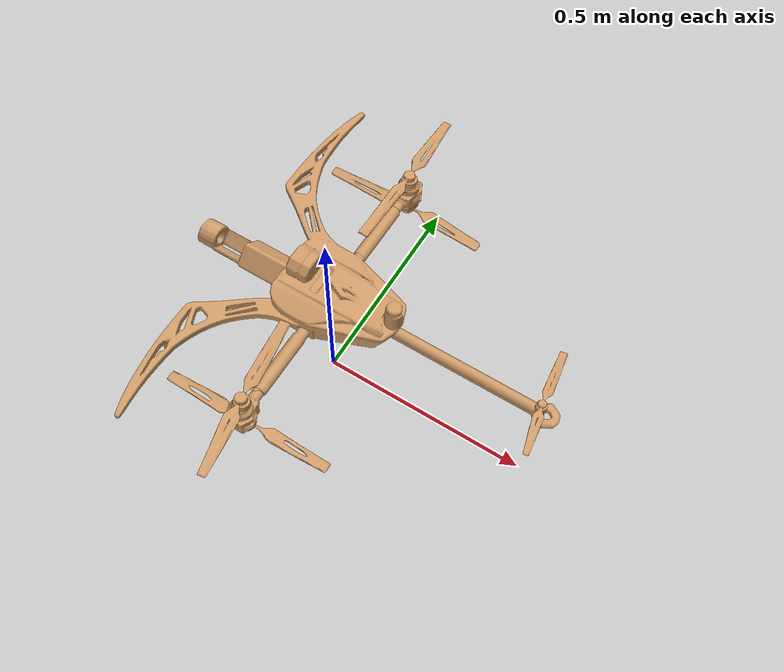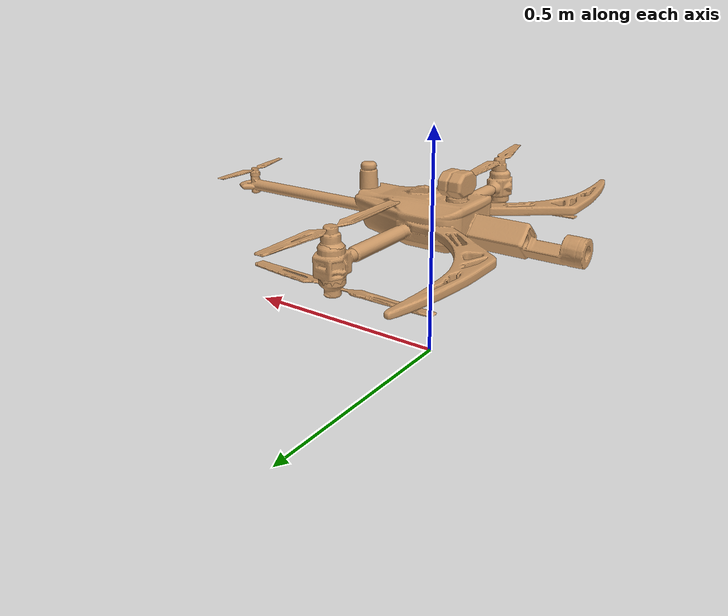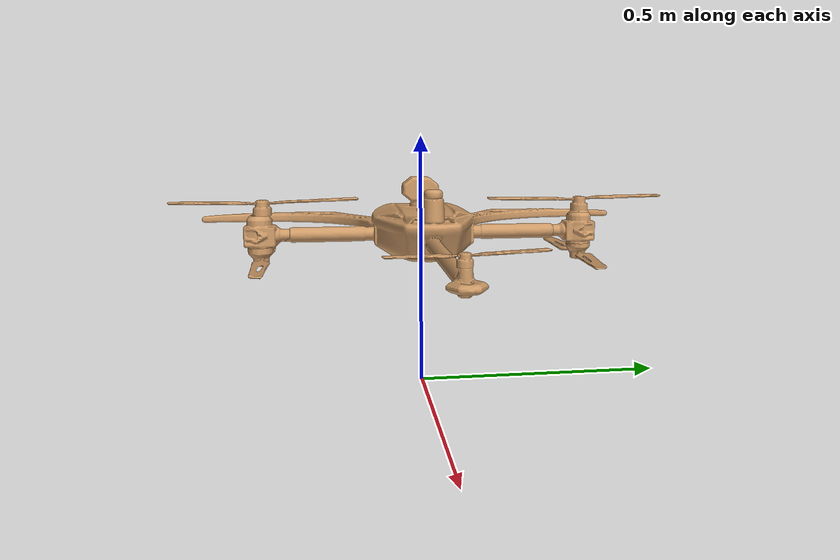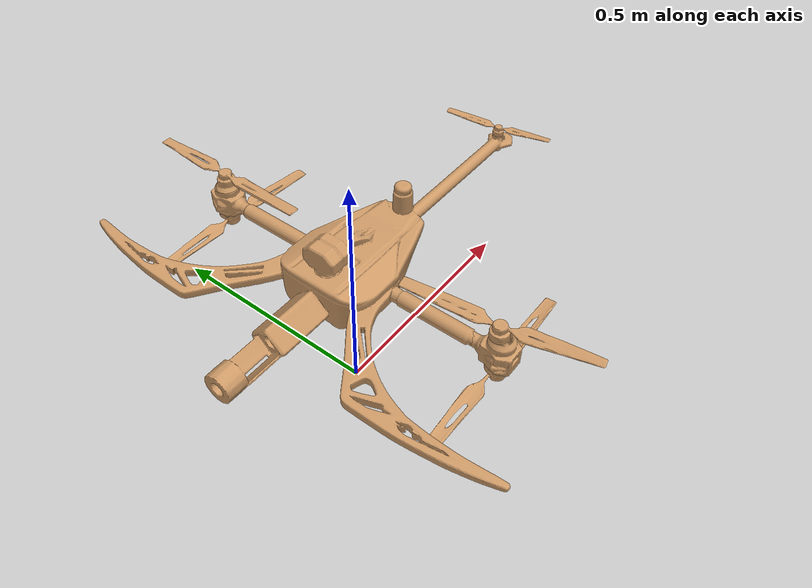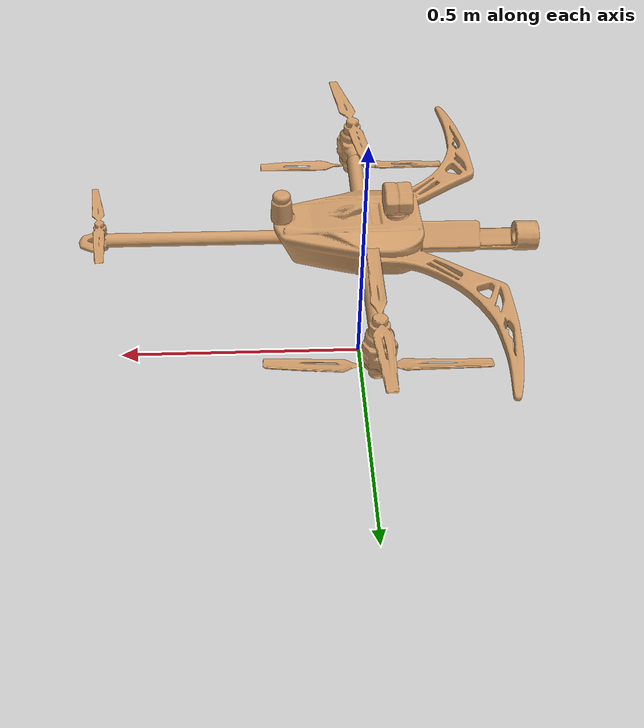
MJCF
<mujoco model="hnuter">
  <!-- 编译器设置：自动计算质量分布限制，使用弧度制，资源目录 -->
  <compiler autolimits="true" angle="radian" assetdir="assets_hnu"/>

  <!-- 物理环境参数：时间步长、重力、空气密度、粘度 -->
  <option timestep="0.005" gravity="0 0 -9.81" density="1.225" viscosity="1.8e-5"/>

  <!-- 全局资源（材质、纹理、网格） -->
  <asset>
    <!-- 纹理：天空盒渐变效果 -->
    <texture type="skybox" builtin="gradient" width="512" height="512" rgb1="0.6 0.8 1" rgb2="0.2 0.3 0.6"/>

    <!-- 材质：定义视觉和碰撞的材质特性 -->
    <material name="visualGeo" rgba="0.8 0.6 0.4 1"/> <!-- 视觉材质：橙色 -->
    <material name="collisionGeo" rgba="0.3 0.3 0.8 0.5"/> <!-- 碰撞材质：蓝色半透明 -->

    <!-- 网格：从STL文件加载无人机的各个部分 -->
    <mesh name="framebody" file="T-framebody.stl"/>
    <mesh name="framer_motor" file="T-framer_motor.stl"/>
    <mesh name="framel_motor" file="T-framel_motor.stl"/>
    <mesh name="framerb" file="T-framerb.stl"/>
    <mesh name="framert" file="T-framert.stl"/>
    <mesh name="framelb" file="T-framelb.stl"/>
    <mesh name="framelt" file="T-framelt.stl"/>
    <mesh name="frametail" file="T-frametail.stl"/>
  </asset>

  <!-- 默认参数设定（按类别分组） -->
  <default>
    <!-- 无人机类别的默认参数 -->
    <default class="drone">
      <!-- 视觉几何体默认参数：不参与碰撞 -->
      <default class="visual">
        <geom group="2" contype="0" conaffinity="0" material="visualGeo"/>
      </default>
      <!-- 碰撞几何体默认参数：设置接触动力学 -->
      <default class="collision">
        <geom group="3" contype="1" conaffinity="1" material="collisionGeo"
              solimp="0.9 0.95 0.001" solref="0.02 0.001"/>
      </default>
      <!-- 电机默认控制范围 -->
      <site group="3"/>
      <motor ctrlrange="0 150"/>
    </default>
  </default>

  <!-- 世界实体（地面、无人机、光源等） -->
  <worldbody>
    <!-- 无人机主机身 -->
    <body name="base_link" pos="0 0 0.3" childclass="drone">
      <!-- 质量特性：位置、质量、对角惯性矩 -->
      <inertial pos="0 0 0" mass="1.7" diaginertia="0.08 0.12 0.1"/>
      <!-- 自由关节：允许6自由度运动，添加阻尼减少振荡 -->
      <joint name="free_joint" type="free"/>
      <!-- 传感器站点：用于放置IMU -->
      <site name="imu" pos="0 0 0.05"/>

      <!-- 主机身几何体：视觉网格和简化碰撞盒 -->
      <geom class="visual" type="mesh" mesh="framebody"/>
      <geom class="collision" type="box" size="0.15 0.15 0.05"/>

      <!-- 右侧倾转机构 -->
      <body name="right_tilt_assembly" pos="0.002412 0.3233 0.009785">
        <inertial pos="0 0 0" mass="0.3" diaginertia="0.01 0.02 0.01"/>
        <!-- 倾转关节：绕Y轴旋转，设置范围及阻尼 -->
        <joint name="tilt_right_joint" type="hinge" axis="0 -1 0" range="-3 3" damping="0.1"/>
        <!-- 几何体：视觉网格和碰撞圆柱 -->
        <geom class="visual" type="mesh" mesh="framer_motor"/>
        <geom class="collision" type="cylinder" size="0.04 0.08"/>
        <!-- 右下螺旋桨 -->
        <body name="right_bottom_prop" pos="0.001315 0.00283 -0.046583">
          <inertial pos="0 0 0" mass="0.015" diaginertia="0.001 0.001 0.002"/>
          <!-- 螺旋桨旋转关节：绕Z轴，有阻尼 -->
          <geom class="visual" type="mesh" mesh="framerb"/>
          <!-- 碰撞体：圆柱，沿Z轴（螺旋桨旋转方向） -->
          <!-- 推力作用点 -->
          <site name="thrust_rb" pos="-0.003727 -0.00013 0.000798" zaxis="0 0 1"/>
        </body>
        <!-- 右上螺旋桨 -->
        <body name="right_top_prop" pos="0.001315 0.00456 0.061833">
          <inertial pos="0 0 0" mass="0.015" diaginertia="0.001 0.001 0.002"/>
          <geom class="visual" type="mesh" mesh="framert"/>
          <site name="thrust_rt" pos="-0.003727 -0.00186 -0.000018" zaxis="0 0 1"/>
        </body>
      </body>

      <!-- 左侧倾转机构（结构对称） -->
      <body name="left_tilt_assembly"  pos="0.002513 -0.31427 0.012522">
        <inertial pos="0 0 0" mass="0.3" diaginertia="0.01 0.02 0.01"/>
        <joint name="tilt_left_joint" type="hinge" axis="0 1 0" range="-3 3" damping="0.1"/>
        <geom class="visual" type="mesh" mesh="framel_motor"/>
        <geom class="collision" type="cylinder" size="0.04 0.08"/>

        <body name="left_bottom_prop" pos="-0.00079 -0.00099 -0.048778">
          <inertial pos="0 0 0" mass="0.015" diaginertia="0.001 0.001 0.002"/>
          <geom class="visual" type="mesh" mesh="framelb"/>
          <site name="thrust_lb" pos="-0.001723 -0.01074 0.000256" zaxis="0 0 1"/>
        </body>

        <body name="left_top_prop" pos="0.000964 0.00328 0.059106">
          <inertial pos="0 0 0" mass="0.015" diaginertia="0.001 0.001 0.002"/>
          <geom class="visual" type="mesh" mesh="framelt"/>
          <site name="thrust_lt" pos="-0.003477 -0.01501 -0.000028" zaxis="0 0 1"/>
        </body>
      </body>

      <!-- 尾部推进器 -->
      <body name="tail_motor" pos="0.50496 0.003984 0.043842">
        <inertial pos="-0.50496 -0.003984 -0.043842" mass="0.2" diaginertia="0.005 0.005 0.01"/>
        <geom class="visual" type="mesh" mesh="frametail"/>
        <geom class="collision" type="cylinder" size="0.1 0.02" zaxis="0 0 1"/>
        <site name="thrust_tail" pos="-0.00496 -0.003984 -0.043842" zaxis="0 0 1"/>
      </body>

    </body>
  </worldbody>

  <!-- 执行器系统 -->
  <actuator>
    <!-- 倾转机构位置控制器：设置刚度和阻尼增益 -->
    <position name="tilt_right" joint="tilt_right_joint" kp="3" kv="1.5"/>
    <position name="tilt_left"  joint="tilt_left_joint" kp="3" kv="1.5"/>

    <!-- 螺旋桨和尾部推进器：力执行器 -->
    <motor class="drone" name="thrust_rb" site="thrust_rb" gear="0 0 1 0 0 0.000006"  forcerange="0 15"/>
    <motor class="drone" name="thrust_rt" site="thrust_rt" gear="0 0 1 0 0 0.000006" forcerange="0 15"/>
    <motor class="drone" name="thrust_lb" site="thrust_lb" gear="0 0 1 0 0 -0.000006"  forcerange="0 15"/>
    <motor class="drone" name="thrust_lt" site="thrust_lt" gear="0 0 1 0 0 -0.000006" forcerange="0 15"/>
    <motor class="drone" name="thrust_tail" site="thrust_tail" gear="0 0 1 0 0 0" forcerange="-30 30" ctrlrange="-30 30"/>
  </actuator>

  <!-- 传感器系统 -->
  <sensor>
    <!-- IMU传感器组：用于状态估计 -->
    <gyro name="body_gyro" site="imu"/> <!-- 陀螺仪：测量角速度 -->
    <accelerometer name="body_acc" site="imu"/> <!-- 加速度计：测量线性加速度 -->
    <framequat name="body_quat" objtype="site" objname="imu"/> <!-- 姿态四元数 -->
    <framepos name="body_pos" objtype="site" objname="imu"/> <!-- 位置信息 -->
    <framelinvel name="body_vel" objtype="site" objname="imu"/> <!-- 线性速度 -->
    <force name="contact_rb" site="thrust_rb"/> <!-- 螺旋桨右下推力 -->
  </sensor>
</mujoco>
